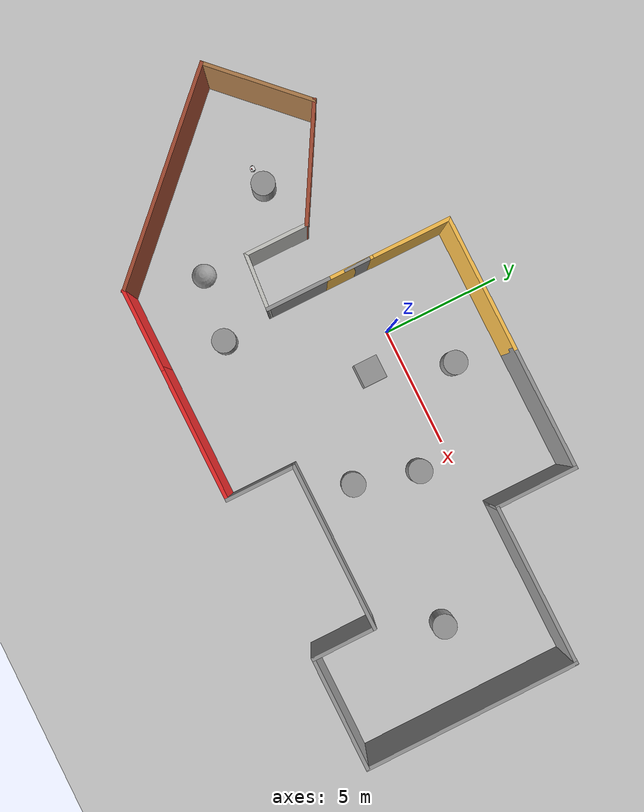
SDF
<sdf version="1.7">
 <world name="default">
  <light name="sun" type="directional">
   <pose>0 0 10 0 -0 0</pose>
   <diffuse>0.8 0.8 0.8 1</diffuse>
   <specular>0.2 0.2 0.2 1</specular>
   <attenuation>
    <range>1000</range>
    <constant>0.9</constant>
    <linear>0.01</linear>
    <quadratic>0.001</quadratic>
   </attenuation>
   <direction>-0.5 0.1 -0.9</direction>
   <spot><inner_angle>0</inner_angle><outer_angle>0</outer_angle><falloff>0</falloff></spot>
  </light>
  <model name="ground_plane">
   <static>1</static>
   <link name="link">
    <collision name="collision">
     <geometry><plane><normal>0 0 1</normal><size>100 100</size></plane></geometry>
     <surface><friction><ode><mu>100</mu><mu2>50</mu2></ode></friction></surface>
    </collision>
    <visual name="visual">
     <cast_shadows>0</cast_shadows>
     <geometry><plane><normal>0 0 1</normal><size>100 100</size></plane></geometry>
     <material>
      <script><uri>file://media/materials/scripts/gazebo.material</uri><name>Gazebo/Grey</name></script>
     </material>
    </visual>
   </link>
  </model>
  <gravity>0 0 -9.8</gravity>
  <magnetic_field>6e-06 2.3e-05 -4.2e-05</magnetic_field>
  <atmosphere type="adiabatic"/>
  <physics type="ode">
   <max_step_size>0.001</max_step_size>
   <real_time_factor>1</real_time_factor>
   <real_time_update_rate>1000</real_time_update_rate>
  </physics>
  <scene><ambient>0.4 0.4 0.4 1</ambient><background>0.7 0.7 0.7 1</background><shadows>1</shadows></scene>
  <spherical_coordinates>
   <surface_model>EARTH_WGS84</surface_model>
   <latitude_deg>0</latitude_deg>
   <longitude_deg>0</longitude_deg>
   <elevation>0</elevation>
   <heading_deg>0</heading_deg>
  </spherical_coordinates>
  <model name="shape">
   <pose>1.04874 -2.39053 0 0 -0 0</pose>
   <link name="Wall_0">
    <collision name="Wall_0_Collision">
     <geometry><box><size>2.75 0.15 2.5</size></box></geometry>
     <pose>0 0 1.25 0 -0 0</pose>
    </collision>
    <visual name="Wall_0_Visual">
     <pose>0 0 1.25 0 -0 0</pose>
     <geometry><box><size>2.75 0.15 2.5</size></box></geometry>
     <material>
      <script><uri>file://media/materials/scripts/gazebo.material</uri><name>Gazebo/Grey</name></script>
      <ambient>1 1 1 1</ambient>
     </material>
     <meta><layer>0</layer></meta>
    </visual>
    <pose>-3.77874 -0.259467 0 0 -0 1.5708</pose>
   </link>
   <link name="Wall_1">
    <collision name="Wall_1_Collision">
     <geometry><box><size>2 0.15 2.5</size></box></geometry>
     <pose>0 0 1.25 0 -0 0</pose>
    </collision>
    <visual name="Wall_1_Visual">
     <pose>0 0 1.25 0 -0 0</pose>
     <geometry><box><size>2 0.15 2.5</size></box></geometry>
     <material>
      <script><uri>file://media/materials/scripts/gazebo.material</uri><name>Gazebo/Grey</name></script>
      <ambient>1 0.764706 0.305882 1</ambient>
     </material>
     <meta><layer>0</layer></meta>
    </visual>
    <pose>-3.77874 1.96553 0 0 -0 1.5708</pose>
   </link>
   <link name="Wall_10">
    <collision name="Wall_10_Collision">
     <geometry><box><size>4.75 0.15 2.5</size></box></geometry>
     <pose>0 0 1.25 0 -0 0</pose>
    </collision>
    <visual name="Wall_10_Visual">
     <pose>0 0 1.25 0 -0 0</pose>
     <geometry><box><size>4.75 0.15 2.5</size></box></geometry>
     <material>
      <script><uri>file://media/materials/scripts/gazebo.material</uri><name>Gazebo/Grey</name></script>
      <ambient>1 1 1 1</ambient>
     </material>
     <meta><layer>0</layer></meta>
    </visual>
    <pose>11.2213 -5.95947 0 0 -0 3.14159</pose>
   </link>
   <link name="Wall_11">
    <collision name="Wall_11_Collision">
     <geometry><box><size>2.75 0.15 2.5</size></box></geometry>
     <pose>0 0 1.25 0 -0 0</pose>
    </collision>
    <visual name="Wall_11_Visual">
     <pose>0 0 1.25 0 -0 0</pose>
     <geometry><box><size>2.75 0.15 2.5</size></box></geometry>
     <material>
      <script><uri>file://media/materials/scripts/gazebo.material</uri><name>Gazebo/Grey</name></script>
      <ambient>1 1 1 1</ambient>
     </material>
     <meta><layer>0</layer></meta>
    </visual>
    <pose>8.92126 -4.65947 0 0 -0 1.5708</pose>
   </link>
   <link name="Wall_12">
    <collision name="Wall_12_Collision">
     <geometry><box><size>7 0.15 2.5</size></box></geometry>
     <pose>0 0 1.25 0 -0 0</pose>
    </collision>
    <visual name="Wall_12_Visual">
     <pose>0 0 1.25 0 -0 0</pose>
     <geometry><box><size>7 0.15 2.5</size></box></geometry>
     <material>
      <script><uri>file://media/materials/scripts/gazebo.material</uri><name>Gazebo/Grey</name></script>
      <ambient>1 1 1 1</ambient>
     </material>
     <meta><layer>0</layer></meta>
    </visual>
    <pose>5.49626 -3.35947 0 0 -0 3.14159</pose>
   </link>
   <link name="Wall_13">
    <collision name="Wall_13_Collision">
     <geometry><box><size>3 0.15 2.5</size></box></geometry>
     <pose>0 0 1.25 0 -0 0</pose>
    </collision>
    <visual name="Wall_13_Visual">
     <pose>0 0 1.25 0 -0 0</pose>
     <geometry><box><size>3 0.15 2.5</size></box></geometry>
     <material>
      <script><uri>file://media/materials/scripts/gazebo.material</uri><name>Gazebo/Grey</name></script>
      <ambient>1 1 1 1</ambient>
     </material>
     <meta><layer>0</layer></meta>
    </visual>
    <pose>2.07126 -4.78447 0 0 -0 -1.5708</pose>
   </link>
   <link name="Wall_14">
    <collision name="Wall_14_Collision">
     <geometry><box><size>5.75 0.15 2.5</size></box></geometry>
     <pose>0 0 1.25 0 -0 0</pose>
    </collision>
    <visual name="Wall_14_Visual">
     <pose>0 0 1.25 0 -0 0</pose>
     <geometry><box><size>5.75 0.15 2.5</size></box></geometry>
     <material>
      <script><uri>file://media/materials/scripts/gazebo.material</uri><name>Gazebo/Grey</name></script>
      <ambient>0.937255 0.160784 0.160784 1</ambient>
     </material>
     <meta><layer>0</layer></meta>
    </visual>
    <pose>-0.728742 -6.20947 0 0 -0 3.14159</pose>
   </link>
   <link name="Wall_15">
    <collision name="Wall_15_Collision">
     <geometry><box><size>3.5 0.15 2.5</size></box></geometry>
     <pose>0 0 1.25 0 -0 0</pose>
    </collision>
    <visual name="Wall_15_Visual">
     <pose>0 0 1.25 0 -0 0</pose>
     <geometry><box><size>3.5 0.15 2.5</size></box></geometry>
     <material>
      <script><uri>file://media/materials/scripts/gazebo.material</uri><name>Gazebo/Grey</name></script>
      <ambient>0.937255 0.160784 0.160784 1</ambient>
     </material>
     <meta><layer>0</layer></meta>
    </visual>
    <pose>-5.20374 -6.20947 0 0 -0 3.14159</pose>
   </link>
   <link name="Wall_16">
    <collision name="Wall_16_Collision">
     <geometry><box><size>9.5 0.15 2.5</size></box></geometry>
     <pose>0 0 1.25 0 -0 0</pose>
    </collision>
    <visual name="Wall_16_Visual">
     <pose>0 0 1.25 0 -0 0</pose>
     <geometry><box><size>9.5 0.15 2.5</size></box></geometry>
     <material>
      <script><uri>file://media/materials/scripts/gazebo.material</uri><name>Gazebo/Bricks</name></script>
      <ambient>1 1 1 1</ambient>
     </material>
     <meta><layer>0</layer></meta>
    </visual>
    <pose>-10.1845 -2.90374 0 0 -0 2.35619</pose>
   </link>
   <link name="Wall_17">
    <collision name="Wall_17_Collision">
     <geometry><box><size>4.75 0.15 2.5</size></box></geometry>
     <pose>0 0 1.25 0 -0 0</pose>
    </collision>
    <visual name="Wall_17_Visual">
     <pose>0 0 1.25 0 -0 0</pose>
     <geometry><box><size>4.75 0.15 2.5</size></box></geometry>
     <material>
      <script><uri>file://media/materials/scripts/gazebo.material</uri><name>Gazebo/Wood</name></script>
      <ambient>1 1 1 1</ambient>
     </material>
     <meta><layer>0</layer></meta>
    </visual>
    <pose>-11.8638 2.02833 0 0 -0 0.785398</pose>
   </link>
   <link name="Wall_18">
    <collision name="Wall_18_Collision">
     <geometry><box><size>5 0.15 2.5</size></box></geometry>
     <pose>0 0 1.25 0 -0 0</pose>
    </collision>
    <visual name="Wall_18_Visual">
     <pose>0 0 1.25 0 -0 0</pose>
     <geometry><box><size>5 0.15 2.5</size></box></geometry>
     <material>
      <script><uri>file://media/materials/scripts/gazebo.material</uri><name>Gazebo/Bricks</name></script>
      <ambient>1 1 1 1</ambient>
     </material>
     <meta><layer>0</layer></meta>
    </visual>
    <pose>-8.13739 2.44217 0 0 -0 -0.523599</pose>
   </link>
   <link name="Wall_19">
    <collision name="Wall_19_Collision">
     <geometry><box><size>2.75 0.15 2.5</size></box></geometry>
     <pose>0 0 1.25 0 -0 0</pose>
    </collision>
    <visual name="Wall_19_Visual">
     <pose>0 0 1.25 0 -0 0</pose>
     <geometry><box><size>2.75 0.15 2.5</size></box></geometry>
     <material>
      <script><uri>file://media/materials/scripts/gazebo.material</uri><name>Gazebo/CeilingTiled</name></script>
      <ambient>1 1 1 1</ambient>
     </material>
     <meta><layer>0</layer></meta>
    </visual>
    <pose>-6.03728 -0.070327 0 0 -0 -1.5708</pose>
   </link>
   <link name="Wall_2">
    <collision name="Wall_2_Collision">
     <geometry><box><size>1.25 0.15 2.5</size></box></geometry>
     <pose>0 0 1.25 0 -0 0</pose>
    </collision>
    <visual name="Wall_2_Visual">
     <pose>0 0 1.25 0 -0 0</pose>
     <geometry><box><size>1.25 0.15 2.5</size></box></geometry>
     <material>
      <script><uri>file://media/materials/scripts/gazebo.material</uri><name>Gazebo/Grey</name></script>
      <ambient>1 1 1 1</ambient>
     </material>
     <meta><layer>0</layer></meta>
    </visual>
    <pose>-3.77874 2.34053 0 0 -0 -1.5708</pose>
   </link>
   <link name="Wall_20">
    <collision name="Wall_20_Collision">
     <geometry><box><size>2.41644 0.15 2.5</size></box></geometry>
     <pose>0 0 1.25 0 -0 0</pose>
    </collision>
    <visual name="Wall_20_Visual">
     <pose>0 0 1.25 0 -0 0</pose>
     <geometry><box><size>2.41644 0.15 2.5</size></box></geometry>
     <material>
      <script><uri>file://media/materials/scripts/gazebo.material</uri><name>Gazebo/CeilingTiled</name></script>
      <ambient>1 1 1 1</ambient>
     </material>
     <meta><layer>0</layer></meta>
    </visual>
    <pose>-4.90801 -1.4649 0 0 -0 -0.083549</pose>
   </link>
   <link name="Wall_4">
    <collision name="Wall_4_Collision">
     <geometry><box><size>3.5 0.15 2.5</size></box></geometry>
     <pose>0 0 1.25 0 -0 0</pose>
    </collision>
    <visual name="Wall_4_Visual">
     <pose>0 0 1.25 0 -0 0</pose>
     <geometry><box><size>3.5 0.15 2.5</size></box></geometry>
     <material>
      <script><uri>file://media/materials/scripts/gazebo.material</uri><name>Gazebo/Grey</name></script>
      <ambient>1 0.764706 0.305882 1</ambient>
     </material>
     <meta><layer>0</layer></meta>
    </visual>
    <pose>-3.77874 4.56553 0 0 -0 1.5708</pose>
   </link>
   <link name="Wall_5">
    <collision name="Wall_5_Collision">
     <geometry><box><size>5.75 0.15 2.5</size></box></geometry>
     <pose>0 0 1.25 0 -0 0</pose>
    </collision>
    <visual name="Wall_5_Visual">
     <pose>0 0 1.25 0 -0 0</pose>
     <geometry><box><size>5.75 0.15 2.5</size></box></geometry>
     <material>
      <script><uri>file://media/materials/scripts/gazebo.material</uri><name>Gazebo/Grey</name></script>
      <ambient>1 0.764706 0.305882 1</ambient>
     </material>
     <meta><layer>0</layer></meta>
    </visual>
    <pose>-0.978742 6.24053 0 0 -0 0</pose>
   </link>
   <link name="Wall_6">
    <collision name="Wall_6_Collision">
     <geometry><box><size>5.25 0.15 2.5</size></box></geometry>
     <pose>0 0 1.25 0 -0 0</pose>
    </collision>
    <visual name="Wall_6_Visual">
     <pose>0 0 1.25 0 -0 0</pose>
     <geometry><box><size>5.25 0.15 2.5</size></box></geometry>
     <material>
      <script><uri>file://media/materials/scripts/gazebo.material</uri><name>Gazebo/Grey</name></script>
      <ambient>1 1 1 1</ambient>
     </material>
     <meta><layer>0</layer></meta>
    </visual>
    <pose>4.37126 6.24053 0 0 -0 0</pose>
   </link>
   <link name="Wall_7">
    <collision name="Wall_7_Collision">
     <geometry><box><size>3.5 0.15 2.5</size></box></geometry>
     <pose>0 0 1.25 0 -0 0</pose>
    </collision>
    <visual name="Wall_7_Visual">
     <pose>0 0 1.25 0 -0 0</pose>
     <geometry><box><size>3.5 0.15 2.5</size></box></geometry>
     <material>
      <script><uri>file://media/materials/scripts/gazebo.material</uri><name>Gazebo/Grey</name></script>
      <ambient>1 1 1 1</ambient>
     </material>
     <meta><layer>0</layer></meta>
    </visual>
    <pose>6.92126 4.56553 0 0 -0 -1.5708</pose>
   </link>
   <link name="Wall_8">
    <collision name="Wall_8_Collision">
     <geometry><box><size>6.75 0.15 2.5</size></box></geometry>
     <pose>0 0 1.25 0 -0 0</pose>
    </collision>
    <visual name="Wall_8_Visual">
     <pose>0 0 1.25 0 -0 0</pose>
     <geometry><box><size>6.75 0.15 2.5</size></box></geometry>
     <material>
      <script><uri>file://media/materials/scripts/gazebo.material</uri><name>Gazebo/Grey</name></script>
      <ambient>1 1 1 1</ambient>
     </material>
     <meta><layer>0</layer></meta>
    </visual>
    <pose>10.2213 2.89053 0 0 -0 0</pose>
   </link>
   <link name="Wall_9">
    <collision name="Wall_9_Collision">
     <geometry><box><size>9 0.15 2.5</size></box></geometry>
     <pose>0 0 1.25 0 -0 0</pose>
    </collision>
    <visual name="Wall_9_Visual">
     <pose>0 0 1.25 0 -0 0</pose>
     <geometry><box><size>9 0.15 2.5</size></box></geometry>
     <material>
      <script><uri>file://media/materials/scripts/gazebo.material</uri><name>Gazebo/Grey</name></script>
      <ambient>1 1 1 1</ambient>
     </material>
     <meta><layer>0</layer></meta>
    </visual>
    <pose>13.5213 -1.53447 0 0 -0 -1.5708</pose>
   </link>
   <static>1</static>
  </model>
  <model name="simplebot">
   <link name="base_link">
    <inertial>
     <pose>0.004814 0 0.062427 0 -0 0</pose>
     <mass>2.44629</mass>
     <inertia>
      <ixx>0.00830263</ixx>
      <ixy>-3.47184e-20</ixy>
      <ixz>-0.00066659</ixz>
      <iyy>0.00895757</iyy>
      <iyz>-6.82532e-20</iyz>
      <izz>0.0144359</izz>
     </inertia>
    </inertial>
    <collision name="base_link_collision">
     <geometry>
      <mesh>
       <scale>0.001 0.001 0.001</scale>
       <uri>/home/sutanmsa/catkin_ws/src/simplebot_description/meshes/base_link.stl</uri>
      </mesh>
     </geometry>
     <surface><friction><ode><mu>0.1</mu><mu2>0.1</mu2></ode></friction></surface>
    </collision>
    <collision name="base_link_fixed_joint_lump__lidar_1_collision_1">
     <geometry>
      <mesh>
       <scale>0.001 0.001 0.001</scale>
       <uri>/home/sutanmsa/catkin_ws/src/simplebot_description/meshes/lidar_1.stl</uri>
      </mesh>
     </geometry>
     <surface><friction><ode><mu>0.2</mu><mu2>0.2</mu2></ode></friction></surface>
    </collision>
    <collision name="base_link_fixed_joint_lump__camera_1_collision_2">
     <geometry>
      <mesh>
       <scale>0.001 0.001 0.001</scale>
       <uri>/home/sutanmsa/catkin_ws/src/simplebot_description/meshes/camera_1.stl</uri>
      </mesh>
     </geometry>
     <surface><friction><ode><mu>0.2</mu><mu2>0.2</mu2></ode></friction></surface>
    </collision>
    <visual name="base_link_visual">
     <geometry>
      <mesh>
       <scale>0.001 0.001 0.001</scale>
       <uri>/home/sutanmsa/catkin_ws/src/simplebot_description/meshes/base_link.stl</uri>
      </mesh>
     </geometry>
     <material>
      <script><name>Gazebo/White</name><uri>file://media/materials/scripts/gazebo.material</uri></script>
     </material>
    </visual>
    <visual name="base_link_fixed_joint_lump__lidar_1_visual_1">
     <geometry>
      <mesh>
       <scale>0.001 0.001 0.001</scale>
       <uri>/home/sutanmsa/catkin_ws/src/simplebot_description/meshes/lidar_1.stl</uri>
      </mesh>
     </geometry>
     <material>
      <script><name>Gazebo/Red</name><uri>file://media/materials/scripts/gazebo.material</uri></script>
     </material>
    </visual>
    <visual name="base_link_fixed_joint_lump__camera_1_visual_2">
     <geometry>
      <mesh>
       <scale>0.001 0.001 0.001</scale>
       <uri>/home/sutanmsa/catkin_ws/src/simplebot_description/meshes/camera_1.stl</uri>
      </mesh>
     </geometry>
     <material>
      <script><name>Gazebo/Blue</name><uri>file://media/materials/scripts/gazebo.material</uri></script>
     </material>
    </visual>
    <sensor name="head_hokuyo_sensor" type="ray">
     <visualize>1</visualize>
     <update_rate>40</update_rate>
     <ray>
      <scan>
       <horizontal>
        <samples>720</samples>
        <resolution>1</resolution>
        <min_angle>-1.5708</min_angle>
        <max_angle>1.5708</max_angle>
       </horizontal>
       <vertical><samples>1</samples><min_angle>0</min_angle><max_angle>0</max_angle></vertical>
      </scan>
      <range><min>0.1</min><max>30</max><resolution>0.01</resolution></range>
      <noise><type>gaussian</type><mean>0</mean><stddev>0.01</stddev></noise>
     </ray>
     <plugin name="gazebo_ros_head_hokuyo_controller" filename="libgazebo_ros_laser.so">
      <topicName>/scan</topicName>
      <frameName>lidar_1</frameName>
      <robotNamespace>/</robotNamespace>
     </plugin>
     <pose>0.035 0 0.112 0 -0 0</pose>
    </sensor>
    <self_collide>1</self_collide>
    <sensor name="camera1" type="camera">
     <update_rate>30</update_rate>
     <camera name="head">
      <horizontal_fov>1.39626</horizontal_fov>
      <image><width>800</width><height>800</height><format>R8G8B8</format></image>
      <clip><near>0.02</near><far>300</far></clip>
      <noise><type>gaussian</type><mean>0</mean><stddev>0.007</stddev></noise>
     </camera>
     <plugin name="camera_controller" filename="libgazebo_ros_camera.so">
      <alwaysOn>1</alwaysOn>
      <updateRate>0.0</updateRate>
      <cameraName>rrbot/camera1</cameraName>
      <imageTopicName>image_raw</imageTopicName>
      <cameraInfoTopicName>camera_info</cameraInfoTopicName>
      <frameName>camera_link</frameName>
      <hackBaseline>0.07</hackBaseline>
      <distortionK1>0.0</distortionK1>
      <distortionK2>0.0</distortionK2>
      <distortionK3>0.0</distortionK3>
      <distortionT1>0.0</distortionT1>
      <distortionT2>0.0</distortionT2>
      <robotNamespace>/</robotNamespace>
     </plugin>
     <pose>0.06 0 0.08 0 -0 0</pose>
    </sensor>
   </link>
   <joint name="Rev1" type="revolute">
    <pose relative_to="base_link">-0.02 -0.1 0.055 0 -0 0</pose>
    <parent>base_link</parent>
    <child>right_wheel_1</child>
    <axis>
     <xyz>0 1 0</xyz>
     <limit><lower>-1e+16</lower><upper>1e+16</upper></limit>
     <dynamics><spring_reference>0</spring_reference><spring_stiffness>0</spring_stiffness></dynamics>
    </axis>
   </joint>
   <link name="right_wheel_1">
    <pose relative_to="Rev1">0 0 0 0 -0 0</pose>
    <inertial>
     <pose>-0 -0.0125 0 0 -0 0</pose>
     <mass>0.182605</mass>
     <inertia>
      <ixx>0.000124</ixx>
      <ixy>0</ixy>
      <ixz>0</ixz>
      <iyy>0.000228</iyy>
      <iyz>0</iyz>
      <izz>0.000124</izz>
     </inertia>
    </inertial>
    <collision name="right_wheel_1_collision">
     <pose>0.02 0.1 -0.055 0 -0 0</pose>
     <geometry>
      <mesh>
       <scale>0.001 0.001 0.001</scale>
       <uri>/home/sutanmsa/catkin_ws/src/simplebot_description/meshes/right_wheel_1.stl</uri>
      </mesh>
     </geometry>
     <surface><friction><ode><mu>1500</mu><mu2>1500</mu2></ode></friction></surface>
    </collision>
    <visual name="right_wheel_1_visual">
     <pose>0.02 0.1 -0.055 0 -0 0</pose>
     <geometry>
      <mesh>
       <scale>0.001 0.001 0.001</scale>
       <uri>/home/sutanmsa/catkin_ws/src/simplebot_description/meshes/right_wheel_1.stl</uri>
      </mesh>
     </geometry>
     <material>
      <script><name>Gazebo/Black</name><uri>file://media/materials/scripts/gazebo.material</uri></script>
     </material>
    </visual>
    <self_collide>1</self_collide>
   </link>
   <joint name="Rev2" type="revolute">
    <pose relative_to="base_link">-0.02 0.1 0.055 0 -0 0</pose>
    <parent>base_link</parent>
    <child>left_wheel_1</child>
    <axis>
     <xyz>0 1 0</xyz>
     <limit><lower>-1e+16</lower><upper>1e+16</upper></limit>
     <dynamics><spring_reference>0</spring_reference><spring_stiffness>0</spring_stiffness></dynamics>
    </axis>
   </joint>
   <link name="left_wheel_1">
    <pose relative_to="Rev2">0 0 0 0 -0 0</pose>
    <inertial>
     <pose>-0 0.0125 0 0 -0 0</pose>
     <mass>0.182605</mass>
     <inertia>
      <ixx>0.000124</ixx>
      <ixy>0</ixy>
      <ixz>0</ixz>
      <iyy>0.000228</iyy>
      <iyz>0</iyz>
      <izz>0.000124</izz>
     </inertia>
    </inertial>
    <collision name="left_wheel_1_collision">
     <pose>0.02 -0.1 -0.055 0 -0 0</pose>
     <geometry>
      <mesh>
       <scale>0.001 0.001 0.001</scale>
       <uri>/home/sutanmsa/catkin_ws/src/simplebot_description/meshes/left_wheel_1.stl</uri>
      </mesh>
     </geometry>
     <surface><friction><ode><mu>1500</mu><mu2>1500</mu2></ode></friction></surface>
    </collision>
    <visual name="left_wheel_1_visual">
     <pose>0.02 -0.1 -0.055 0 -0 0</pose>
     <geometry>
      <mesh>
       <scale>0.001 0.001 0.001</scale>
       <uri>/home/sutanmsa/catkin_ws/src/simplebot_description/meshes/left_wheel_1.stl</uri>
      </mesh>
     </geometry>
     <material>
      <script><name>Gazebo/Black</name><uri>file://media/materials/scripts/gazebo.material</uri></script>
     </material>
    </visual>
    <self_collide>1</self_collide>
   </link>
   <plugin name="control" filename="libgazebo_ros_control.so"><robotNamespace>/</robotNamespace></plugin>
   <static>0</static>
   <plugin name="differential_drive_controller" filename="libgazebo_ros_diff_drive.so">
    <updateRate>100</updateRate>
    <leftJoint>Rev2</leftJoint>
    <rightJoint>Rev1</rightJoint>
    <wheelSeparation>0.2</wheelSeparation>
    <wheelDiameter>0.1</wheelDiameter>
    <wheelAcceleration>2.5</wheelAcceleration>
    <wheelTorque>50</wheelTorque>
    <commandTopic>cmd_vel</commandTopic>
    <odometryTopic>odom</odometryTopic>
    <odometryFrame>odom</odometryFrame>
    <robotBaseFrame>base_link</robotBaseFrame>
    <odometrySource>1</odometrySource>
    <publishWheelTF>0</publishWheelTF>
    <publishOdom>0</publishOdom>
    <publishWheelJointState>0</publishWheelJointState>
    <legacyMode>0</legacyMode>
    <robotNamespace>/</robotNamespace>
   </plugin>
   <pose>-8.53018 -1.89474 -0.005004 -0.000175 4.4e-05 -1.55969</pose>
  </model>
  <model name="unit_sphere">
   <pose>-5.34608 -5.63214 0.5 0 -0 0</pose>
   <link name="link">
    <inertial>
     <mass>1</mass>
     <inertia><ixx>0.1</ixx><ixy>0</ixy><ixz>0</ixz><iyy>0.1</iyy><iyz>0</iyz><izz>0.1</izz></inertia>
    </inertial>
    <collision name="collision"><geometry><sphere><radius>0.5</radius></sphere></geometry></collision>
    <visual name="visual">
     <geometry><sphere><radius>0.5</radius></sphere></geometry>
     <material>
      <script><name>Gazebo/Grey</name><uri>file://media/materials/scripts/gazebo.material</uri></script>
     </material>
    </visual>
   </link>
  </model>
  <model name="unit_cylinder">
   <pose>-2.57463 -6.06974 0.499998 3e-06 -4e-06 0</pose>
   <link name="link">
    <inertial>
     <mass>1</mass>
     <inertia><ixx>0.145833</ixx><ixy>0</ixy><ixz>0</ixz><iyy>0.145833</iyy><iyz>0</iyz><izz>0.125</izz></inertia>
    </inertial>
    <collision name="collision">
     <geometry><cylinder><radius>0.5</radius><length>1</length></cylinder></geometry>
    </collision>
    <visual name="visual">
     <geometry><cylinder><radius>0.5</radius><length>1</length></cylinder></geometry>
     <material>
      <script><name>Gazebo/Grey</name><uri>file://media/materials/scripts/gazebo.material</uri></script>
     </material>
    </visual>
   </link>
  </model>
  <model name="unit_cylinder_0">
   <pose>-7.55373 -1.84228 0.499998 3e-06 4e-06 -0</pose>
   <link name="link">
    <inertial>
     <mass>1</mass>
     <inertia><ixx>0.145833</ixx><ixy>0</ixy><ixz>0</ixz><iyy>0.145833</iyy><iyz>0</iyz><izz>0.125</izz></inertia>
    </inertial>
    <collision name="collision">
     <geometry><cylinder><radius>0.5</radius><length>1</length></cylinder></geometry>
    </collision>
    <visual name="visual">
     <geometry><cylinder><radius>0.5</radius><length>1</length></cylinder></geometry>
     <material>
      <script><name>Gazebo/Grey</name><uri>file://media/materials/scripts/gazebo.material</uri></script>
     </material>
    </visual>
   </link>
  </model>
  <model name="unit_cylinder_1">
   <pose>5.59579 -1.3804 0.499997 3e-06 3e-06 0</pose>
   <link name="link">
    <inertial>
     <mass>1</mass>
     <inertia><ixx>0.145833</ixx><ixy>0</ixy><ixz>0</ixz><iyy>0.145833</iyy><iyz>0</iyz><izz>0.125</izz></inertia>
    </inertial>
    <collision name="collision">
     <geometry><cylinder><radius>0.5</radius><length>1</length></cylinder></geometry>
    </collision>
    <visual name="visual">
     <geometry><cylinder><radius>0.5</radius><length>1</length></cylinder></geometry>
     <material>
      <script><name>Gazebo/Grey</name><uri>file://media/materials/scripts/gazebo.material</uri></script>
     </material>
    </visual>
   </link>
  </model>
  <model name="unit_cylinder_2">
   <pose>4.87913 -4.00421 0.499997 3e-06 4e-06 -0</pose>
   <link name="link">
    <inertial>
     <mass>1</mass>
     <inertia><ixx>0.145833</ixx><ixy>0</ixy><ixz>0</ixz><iyy>0.145833</iyy><iyz>0</iyz><izz>0.125</izz></inertia>
    </inertial>
    <collision name="collision">
     <geometry><cylinder><radius>0.5</radius><length>1</length></cylinder></geometry>
    </collision>
    <visual name="visual">
     <geometry><cylinder><radius>0.5</radius><length>1</length></cylinder></geometry>
     <material>
      <script><name>Gazebo/Grey</name><uri>file://media/materials/scripts/gazebo.material</uri></script>
     </material>
    </visual>
   </link>
  </model>
  <model name="unit_cylinder_3">
   <pose>2.34559 1.82814 0.499993 -3e-06 -4e-06 -0</pose>
   <link name="link">
    <inertial>
     <mass>1</mass>
     <inertia><ixx>0.145833</ixx><ixy>0</ixy><ixz>0</ixz><iyy>0.145833</iyy><iyz>0</iyz><izz>0.125</izz></inertia>
    </inertial>
    <collision name="collision">
     <geometry><cylinder><radius>0.5</radius><length>1</length></cylinder></geometry>
    </collision>
    <visual name="visual">
     <geometry><cylinder><radius>0.5</radius><length>1</length></cylinder></geometry>
     <material>
      <script><name>Gazebo/Grey</name><uri>file://media/materials/scripts/gazebo.material</uri></script>
     </material>
    </visual>
   </link>
  </model>
  <model name="unit_cylinder_4">
   <pose>11.5006 -3.28516 0.499993 -3e-06 -4e-06 -0</pose>
   <link name="link">
    <inertial>
     <mass>1</mass>
     <inertia><ixx>0.145833</ixx><ixy>0</ixy><ixz>0</ixz><iyy>0.145833</iyy><iyz>0</iyz><izz>0.125</izz></inertia>
    </inertial>
    <collision name="collision">
     <geometry><cylinder><radius>0.5</radius><length>1</length></cylinder></geometry>
    </collision>
    <visual name="visual">
     <geometry><cylinder><radius>0.5</radius><length>1</length></cylinder></geometry>
     <material>
      <script><name>Gazebo/Grey</name><uri>file://media/materials/scripts/gazebo.material</uri></script>
     </material>
    </visual>
   </link>
  </model>
  <model name="unit_box">
   <pose>1.13635 -1.37969 0.5 0 -0 0</pose>
   <link name="link">
    <inertial>
     <mass>1</mass>
     <inertia>
      <ixx>0.166667</ixx>
      <ixy>0</ixy>
      <ixz>0</ixz>
      <iyy>0.166667</iyy>
      <iyz>0</iyz>
      <izz>0.166667</izz>
     </inertia>
    </inertial>
    <collision name="collision"><geometry><box><size>1 1 1</size></box></geometry></collision>
    <visual name="visual">
     <geometry><box><size>1 1 1</size></box></geometry>
     <material>
      <script><name>Gazebo/Grey</name><uri>file://media/materials/scripts/gazebo.material</uri></script>
     </material>
    </visual>
   </link>
  </model>
 </world>
</sdf>
